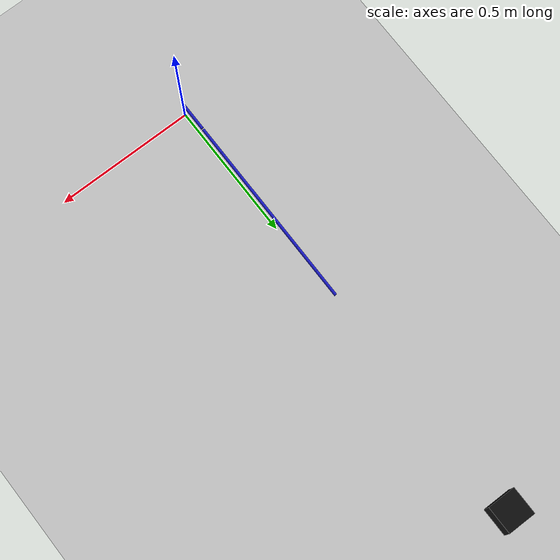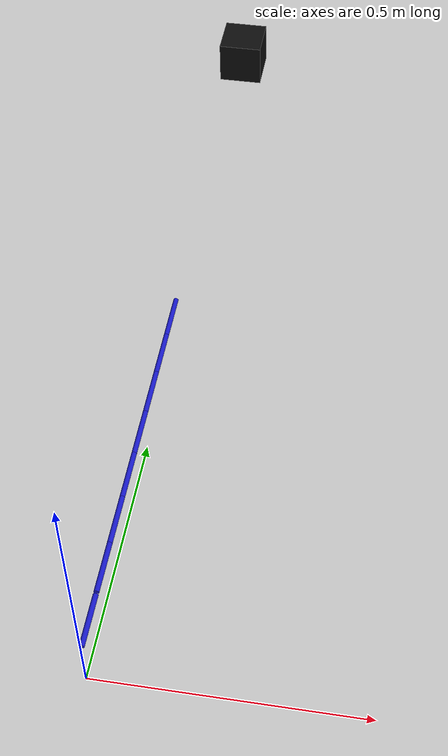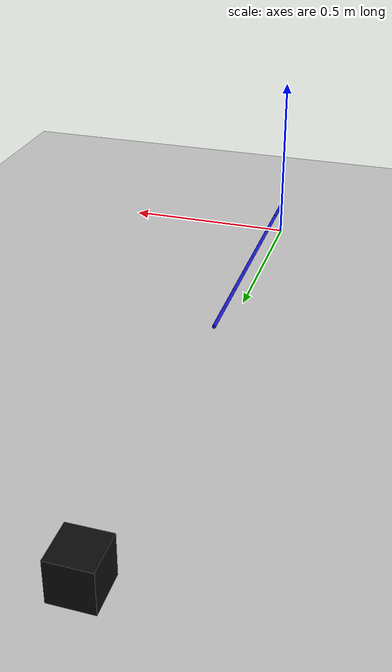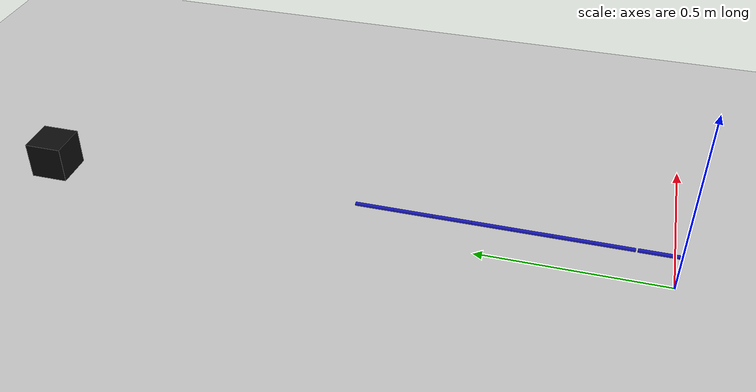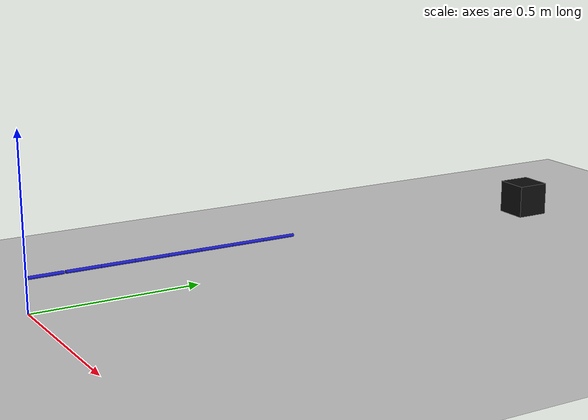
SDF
<sdf version="1.9">
 <world name="map">
  <physics name="1ms" type="ignore">
   <max_step_size>0.001</max_step_size>
   <real_time_factor>1</real_time_factor>
  </physics>
  <plugin filename="gz-sim-physics-system" name="gz::sim::systems::Physics"/>
  <plugin filename="gz-sim-sensors-system" name="gz::sim::systems::Sensors">
   <render_engine>ogre2</render_engine>
  </plugin>
  <plugin filename="gz-sim-user-commands-system" name="gz::sim::systems::UserCommands"/>
  <plugin filename="gz-sim-scene-broadcaster-system" name="gz::sim::systems::SceneBroadcaster"/>
  <plugin filename="gz-sim-air-pressure-system" name="gz::sim::systems::AirPressure"/>
  <plugin filename="gz-sim-air-speed-system" name="gz::sim::systems::AirSpeed"/>
  <plugin filename="gz-sim-altimeter-system" name="gz::sim::systems::Altimeter"/>
  <plugin filename="gz-sim-imu-system" name="gz::sim::systems::Imu"/>
  <plugin filename="gz-sim-magnetometer-system" name="gz::sim::systems::Magnetometer"/>
  <plugin filename="gz-sim-navsat-system" name="gz::sim::systems::NavSat"/>
  <scene><ambient>1.0 1.0 1.0</ambient><background>0.8 0.8 0.8</background></scene>
  <light type="directional" name="sun">
   <pose>0 0 10 0 0 0</pose>
   <diffuse>0.8 0.8 0.8 1</diffuse>
   <specular>0.8 0.8 0.8 1</specular>
   <attenuation>
    <range>1000</range>
    <constant>0.9</constant>
    <linear>0.01</linear>
    <quadratic>0.001</quadratic>
   </attenuation>
   <direction>-0.5 0.1 -0.9</direction>
  </light>
  <spherical_coordinates>
   <latitude_deg>-35.3632621</latitude_deg>
   <longitude_deg>149.1652374</longitude_deg>
   <elevation>10.0</elevation>
   <heading_deg>0</heading_deg>
   <surface_model>EARTH_WGS84</surface_model>
  </spherical_coordinates>
  <model name="ground_plane">
   <static>true</static>
   <link name="link">
    <collision name="collision">
     <geometry><plane><normal>0 0 1</normal><size>100 100</size></plane></geometry>
    </collision>
    <visual name="visual">
     <geometry><plane><normal>0 0 1</normal><size>100 100</size></plane></geometry>
     <material>
      <ambient>0.8 0.8 0.8 1</ambient>
      <diffuse>0.8 0.8 0.8 1</diffuse>
      <specular>0.8 0.8 0.8 1</specular>
     </material>
    </visual>
   </link>
  </model>
  <include><uri>model://cable</uri><name>cable</name><pose degrees="false">0 0 0.1 1.57 0 0</pose></include>
  <include><uri>model://cube</uri><name>payload</name><pose degrees="false">0 1.67 0.1 1.57 0 0</pose></include>
  <joint name="cable_payload_joint" type="revolute">
   <parent>cable::link15</parent>
   <child>payload::base_link</child>
   <axis>
    <xyz>1 0 0</xyz>
    <limit><lower>-3.14/3</lower><upper>3.14/3</upper></limit>
    <dynamics><damping>0.00005</damping></dynamics>
   </axis>
   <physics><ode><implicit_spring_damper>1</implicit_spring_damper></ode></physics>
  </joint>
  <joint name="cable_drone_joint" type="revolute">
   <parent>drone_v1::base_link</parent>
   <child>cable::link0</child>
   <axis>
    <xyz>1 0 0</xyz>
    <limit><lower>-3.14/3</lower><upper>3.14/3</upper></limit>
    <dynamics><damping>0.00005</damping></dynamics>
   </axis>
   <physics><ode><implicit_spring_damper>1</implicit_spring_damper></ode></physics>
  </joint>
 </world>
</sdf>

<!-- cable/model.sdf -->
<sdf version="1.6">
  <model name="cable">
    <link name="base_link">
      <inertial>
        <pose>0 0 0 0 0 0</pose>
        <mass>0.00001</mass>
        <inertia>
          <ixx>0.0000016833</ixx>
          <ixy>0</ixy>
          <ixz>0</ixz>
          <iyy>0.0000016833</iyy>
          <iyz>0</iyz>
          <izz>0.00000005</izz>
        </inertia>
      </inertial>
      <visual name="base_visual">
        <pose>0 0 -0.055 0 0 0</pose>
        <geometry>
          <cylinder>
            <radius>0.005</radius>
            <length>0.1</length>
          </cylinder>
        </geometry>
        <material>
          <ambient>0.1 0.1 0.8 1</ambient>
          <diffuse>0.1 0.1 0.8 1</diffuse>
          <specular>0.1 0.1 0.1 1</specular>
        </material>
      </visual>
    </link>

    <link name="link1">
    <inertial>
        <pose>0 0 0 0 0 0</pose>
        <mass>0.00001</mass>
        <inertia>
          <ixx>0.0000016833</ixx>
          <ixy>0</ixy>
          <ixz>0</ixz>
          <iyy>0.0000016833</iyy>
          <iyz>0</iyz>
          <izz>0.00000005</izz>
        </inertia>
    </inertial>
      <pose>0 0 -0.105 0 0 0</pose>
      <visual name="visual1">
        <pose>0 0 -0.055 0 0 0</pose>
        <geometry>
          <cylinder>
            <radius>0.005</radius>
            <length>0.1</length>
          </cylinder>
        </geometry>
        <material>
          <ambient>0.1 0.1 0.8 1</ambient>
          <diffuse>0.1 0.1 0.8 1</diffuse>
          <specular>0.1 0.1 0.1 1</specular>
        </material>
      </visual>
    </link>

    <link name="link2">
    <inertial>
        <pose>0 0 0 0 0 0</pose>
        <mass>0.00001</mass>
        <inertia>
          <ixx>0.0000016833</ixx>
          <ixy>0</ixy>
          <ixz>0</ixz>
          <iyy>0.0000016833</iyy>
          <iyz>0</iyz>
          <izz>0.00000005</izz>
        </inertia>
    </inertial>
      <pose>0 0 -0.205 0 0 0</pose>
      <visual name="visual2">
      <pose>0 0 -0.055 0 0 0</pose>
        <geometry>
          <cylinder>
            <radius>0.005</radius>
            <length>0.1</length>
          </cylinder>
        </geometry>
        <material>
          <ambient>0.1 0.1 0.8 1</ambient>
          <diffuse>0.1 0.1 0.8 1</diffuse>
          <specular>0.1 0.1 0.1 1</specular>
        </material>
      </visual>
    </link>

    <link name="link3">
    <inertial>
        <pose>0 0 0 0 0 0</pose>
        <mass>0.00001</mass>
        <inertia>
          <ixx>0.0000016833</ixx>
          <ixy>0</ixy>
          <ixz>0</ixz>
          <iyy>0.0000016833</iyy>
          <iyz>0</iyz>
          <izz>0.00000005</izz>
        </inertia>
    </inertial>
      <pose>0 0 -0.305 0 0 0</pose>
      <visual name="visual3">
      <pose>0 0 -0.055 0 0 0</pose>
        <geometry>
          <cylinder>
            <radius>0.005</radius>
            <length>0.1</length>
          </cylinder>
        </geometry>
        <material>
          <ambient>0.1 0.1 0.8 1</ambient>
          <diffuse>0.1 0.1 0.8 1</diffuse>
          <specular>0.1 0.1 0.1 1</specular>
        </material>
      </visual>
    </link>

    <link name="link4">
    <inertial>
        <pose>0 0 0 0 0 0</pose>
        <mass>0.00001</mass>
        <inertia>
          <ixx>0.0000016833</ixx>
          <ixy>0</ixy>
          <ixz>0</ixz>
          <iyy>0.0000016833</iyy>
          <iyz>0</iyz>
          <izz>0.00000005</izz>
        </inertia>
    </inertial>
      <pose>0 0 -0.405 0 0 0</pose>
      <visual name="visual4">
      <pose>0 0 -0.055 0 0 0</pose>
        <geometry>
          <cylinder>
            <radius>0.005</radius>
            <length>0.1</length>
          </cylinder>
        </geometry>
        <material>
          <ambient>0.1 0.1 0.8 1</ambient>
          <diffuse>0.1 0.1 0.8 1</diffuse>
          <specular>0.1 0.1 0.1 1</specular>
        </material>
      </visual>
    </link>

    <link name="link5">
    <inertial>
        <pose>0 0 0 0 0 0</pose>
        <mass>0.00001</mass>
        <inertia>
          <ixx>0.0000016833</ixx>
          <ixy>0</ixy>
          <ixz>0</ixz>
          <iyy>0.0000016833</iyy>
          <iyz>0</iyz>
          <izz>0.00000005</izz>
        </inertia>
    </inertial>
      <pose>0 0 -0.505 0 0 0</pose>
      <visual name="visual5">
      <pose>0 0 -0.055 0 0 0</pose>
        <geometry>
          <cylinder>
            <radius>0.005</radius>
            <length>0.1</length>
          </cylinder>
        </geometry>
        <material>
          <ambient>0.1 0.1 0.8 1</ambient>
          <diffuse>0.1 0.1 0.8 1</diffuse>
          <specular>0.1 0.1 0.1 1</specular>
        </material>
      </visual>
    </link>

    <link name="link6">
    <inertial>
        <pose>0 0 0 0 0 0</pose>
        <mass>0.00001</mass>
        <inertia>
          <ixx>0.0000016833</ixx>
          <ixy>0</ixy>
          <ixz>0</ixz>
          <iyy>0.0000016833</iyy>
          <iyz>0</iyz>
          <izz>0.00000005</izz>
        </inertia>
    </inertial>
      <pose>0 0 -0.605 0 0 0</pose>
      <visual name="visual6">
      <pose>0 0 -0.055 0 0 0</pose>
        <geometry>
          <cylinder>
            <radius>0.005</radius>
            <length>0.1</length>
          </cylinder>
        </geometry>
        <material>
          <ambient>0.1 0.1 0.8 1</ambient>
          <diffuse>0.1 0.1 0.8 1</diffuse>
          <specular>0.1 0.1 0.1 1</specular>
        </material>
      </visual>
    </link>

    <link name="link7">
    <inertial>
        <pose>0 0 0 0 0 0</pose>
        <mass>0.00001</mass>
        <inertia>
          <ixx>0.0000016833</ixx>
          <ixy>0</ixy>
          <ixz>0</ixz>
          <iyy>0.0000016833</iyy>
          <iyz>0</iyz>
          <izz>0.00000005</izz>
        </inertia>
    </inertial>
      <pose>0 0 -0.705 0 0 0</pose>
      <visual name="visual7">
      <pose>0 0 -0.055 0 0 0</pose>
        <geometry>
          <cylinder>
            <radius>0.005</radius>
            <length>0.1</length>
          </cylinder>
        </geometry>
        <material>
          <ambient>0.1 0.1 0.8 1</ambient>
          <diffuse>0.1 0.1 0.8 1</diffuse>
          <specular>0.1 0.1 0.1 1</specular>
        </material>
      </visual>
    </link>

    <joint name='joint0' type='revolute'>
        <child>link1</child>
      <parent>base_link</parent>
      <axis>
        <xyz>0 1 0</xyz>
        <limit>
          <lower>-3.14/3</lower>
          <upper>3.14/3</upper>
        </limit>
        <dynamics>
          <damping>0.4</damping>
        </dynamics>
      </axis>
      <physics>
        <ode>
          <implicit_spring_damper>1</implicit_spring_damper>
        </ode>
      </physics>
    </joint>

    <joint name='joint1' type='revolute'>
        <child>link2</child>
      <parent>link1</parent>
      <axis>
        <xyz>1 0 0</xyz>
        <limit>
          <lower>-3.14/3</lower>
          <upper>3.14/3</upper>
        </limit>
        <dynamics>
          <damping>0.4</damping>
        </dynamics>
      </axis>
      <physics>
        <ode>
          <implicit_spring_damper>1</implicit_spring_damper>
        </ode>
      </physics>
    </joint>

    <joint name='joint2' type='revolute'>
        <child>link3</child>
      <parent>link2</parent>
      <axis>
        <xyz>0 1 0</xyz>
        <limit>
          <lower>-3.14/3</lower>
          <upper>3.14/3</upper>
        </limit>
        <dynamics>
          <damping>0.4</damping>
        </dynamics>
      </axis>
      <physics>
        <ode>
          <implicit_spring_damper>1</implicit_spring_damper>
        </ode>
      </physics>
    </joint>

    <joint name='joint3' type='revolute'>
      <child>link4</child>
      <parent>link3</parent>
      <axis>
        <xyz>1 0 0</xyz>
        <limit>
          <lower>-3.14/3</lower>
          <upper>3.14/3</upper>
        </limit>
        <dynamics>
          <damping>0.4</damping>
        </dynamics>
      </axis>
      <physics>
        <ode>
          <implicit_spring_damper>1</implicit_spring_damper>
        </ode>
      </physics>
    </joint>

    <joint name='joint4' type='revolute'>
      <child>link5</child>
      <parent>link4</parent>
      <axis>
        <xyz>0 1 0</xyz>
        <limit>
          <lower>-3.14/3</lower>
          <upper>3.14/3</upper>
        </limit>
        <dynamics>
          <damping>0.4</damping>
        </dynamics>
      </axis>
      <physics>
        <ode>
          <implicit_spring_damper>1</implicit_spring_damper>
        </ode>
      </physics>
    </joint>

    <joint name='joint5' type='revolute'>
      <child>link6</child>
      <parent>link5</parent>
      <axis>
        <xyz>1 0 0</xyz>
        <limit>
          <lower>-3.14/3</lower>
          <upper>3.14/3</upper>
        </limit>
        <dynamics>
          <damping>0.4</damping>
        </dynamics>
      </axis>
      <physics>
        <ode>
          <implicit_spring_damper>1</implicit_spring_damper>
        </ode>
      </physics>
    </joint>

    <joint name='joint6' type='revolute'>
      <child>link7</child>
      <parent>link6</parent>
      <axis>
        <xyz>0 1 0</xyz>
        <limit>
          <lower>-3.14/3</lower>
          <upper>3.14/3</upper>
        </limit>
        <dynamics>
          <damping>0.4</damping>
        </dynamics>
      </axis>
      <physics>
        <ode>
          <implicit_spring_damper>1</implicit_spring_damper>
        </ode>
      </physics>
    </joint>

  </model>
</sdf>

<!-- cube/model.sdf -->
<sdf version="1.6">
  <model name="cube">
    <link name="base_link">
      <inertial>
        <pose>0 0 0 0 0 0</pose>
        <mass>0.001</mass>
        <inertia>
          <ixx>0.00016833</ixx>
          <ixy>0</ixy>
          <ixz>0</ixz>
          <iyy>0.00016833</iyy>
          <iyz>0</iyz>
          <izz>0.000005</izz>
        </inertia>
      </inertial>
      <collision name="base_collision">
        <pose>0 0 0 0 1.57 0</pose>
        <geometry>
        <box>
            <size>0.1 0.1 0.1</size>
        </box>
        </geometry>
        <surface>
          <contact>
            <ode>
              <max_vel>100.0</max_vel>
              <min_depth>0.001</min_depth>
            </ode>
          </contact>
          <friction>
            <ode>
              <mu>100000.0</mu>
              <mu2>100000.0</mu2>
            </ode>
          </friction>
        </surface>
      </collision>
      <visual name="base_visual">
        <pose>0 0 0 0 1.57 0</pose>
        <geometry>
            <box>
              <size>0.1 0.1 0.1</size>
            </box>
        </geometry>
        <material>
          <ambient>0.05 0.05 0.05</ambient>
          <diffuse>0.05 0.05 0.05</diffuse>
          <specular>1 1 1 1</specular>
          <pbr>
            <metal>
              <metalness>0.5</metalness>
              <roughness>0.5</roughness>
            </metal>
          </pbr>
        </material>
      </visual>
    </link>

  </model>
</sdf>
